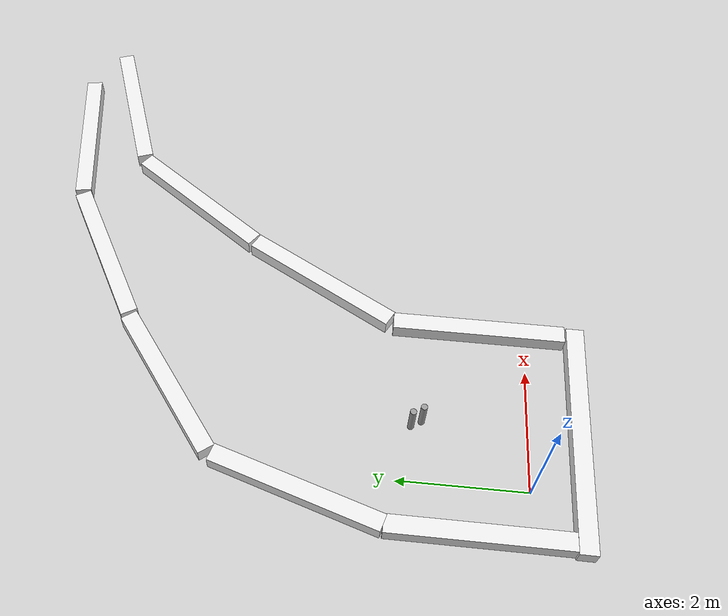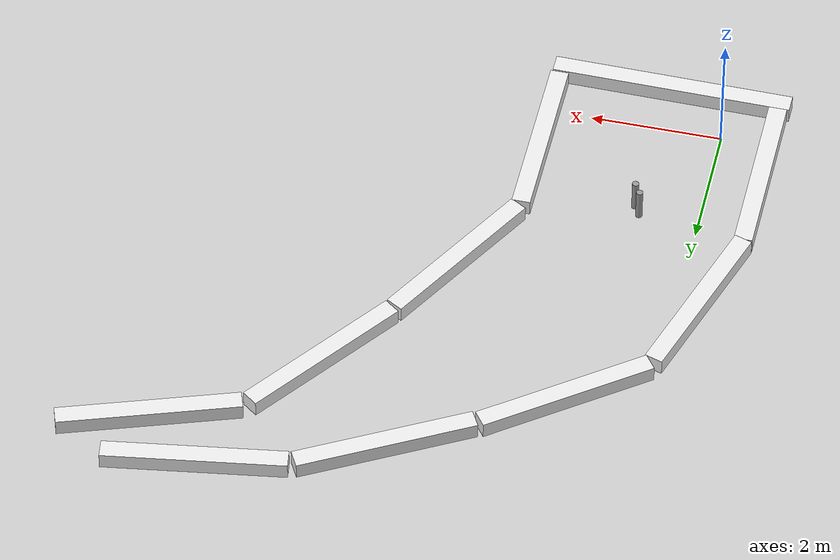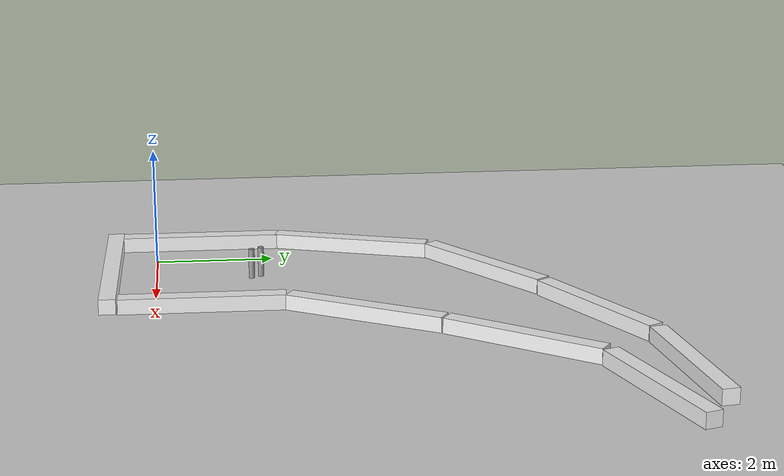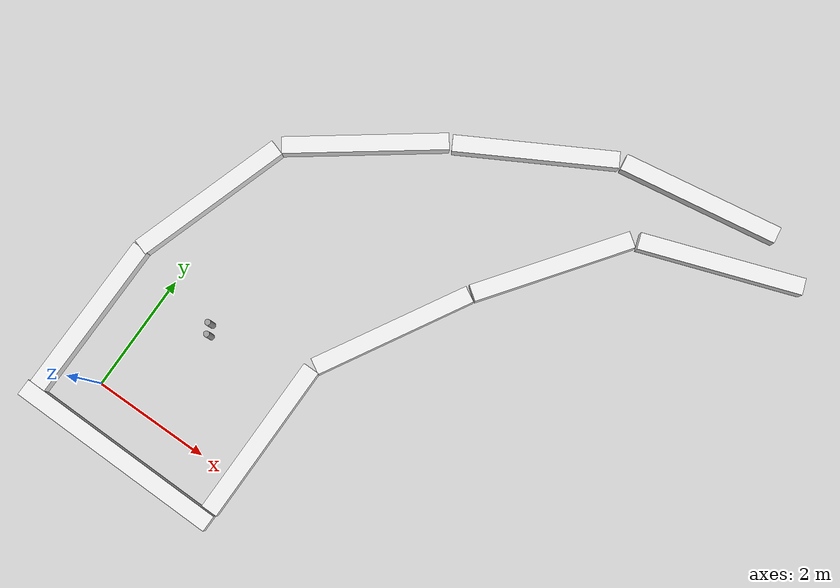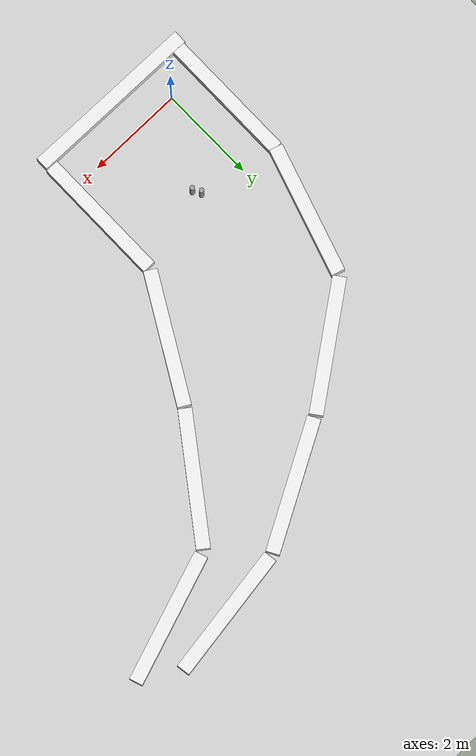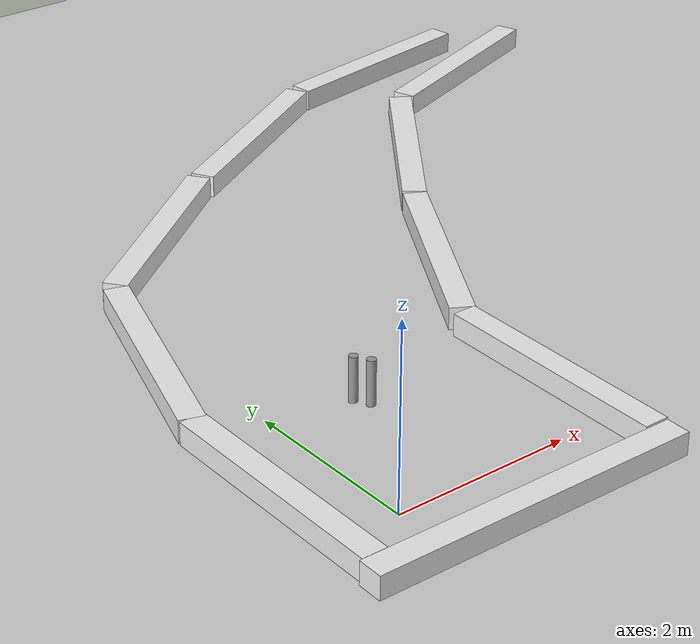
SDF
<sdf version="1.6">
 <world name="default">
  <light name="sun" type="directional">
   <pose>0 0 10 0 -0 0</pose>
   <diffuse>0.8 0.8 0.8 1</diffuse>
   <specular>0.1 0.1 0.1 1</specular>
   <attenuation>
    <range>1000</range>
    <constant>0.9</constant>
    <linear>0.01</linear>
    <quadratic>0.001</quadratic>
   </attenuation>
   <direction>-0.5 0.5 -1</direction>
  </light>
  <model name="unit_tracker">
   <link name="link">
    <pose>0.003083 0.120916 0 0 -0 0</pose>
    <inertial>
     <mass>1</mass>
     <inertia><ixx>0.145833</ixx><ixy>0</ixy><ixz>0</ixz><iyy>0.145833</iyy><iyz>0</iyz><izz>0.125</izz></inertia>
    </inertial>
    <visual name="visual">
     <geometry><cylinder><radius>0.05</radius><length>1</length></cylinder></geometry>
     <material>
      <script><name>Gazebo/Grey</name><uri>file://media/materials/scripts/gazebo.material</uri></script>
      <ambient>0.3 0.3 0.3 1</ambient>
      <diffuse>0.7 0.7 0.7 1</diffuse>
      <specular>0.01 0.01 0.01 1</specular>
      <emissive>0 0 0 1</emissive>
      <shader type="vertex"><normal_map>__default__</normal_map></shader>
     </material>
    </visual>
    <collision name="collision">
     <geometry><cylinder><radius>0.05</radius><length>1</length></cylinder></geometry>
     <surface>
      <friction>
       <ode><mu>1</mu><mu2>1</mu2><fdir1>0 0 0</fdir1><slip1>0</slip1><slip2>0</slip2></ode>
       <torsional>
        <coefficient>1</coefficient>
        <patch_radius>0</patch_radius>
        <surface_radius>0</surface_radius>
        <use_patch_radius>1</use_patch_radius>
        <ode><slip>0</slip></ode>
       </torsional>
      </friction>
      <bounce><restitution_coefficient>0</restitution_coefficient><threshold>1e+06</threshold></bounce>
      <contact>
       <collide_without_contact>0</collide_without_contact>
       <collide_without_contact_bitmask>1</collide_without_contact_bitmask>
       <collide_bitmask>1</collide_bitmask>
       <ode>
        <soft_cfm>0</soft_cfm>
        <soft_erp>0.2</soft_erp>
        <kp>1e+13</kp>
        <kd>1</kd>
        <max_vel>0.01</max_vel>
        <min_depth>0</min_depth>
       </ode>
       <bullet>
        <split_impulse>1</split_impulse>
        <split_impulse_penetration_threshold>-0.01</split_impulse_penetration_threshold>
        <soft_cfm>0</soft_cfm>
        <soft_erp>0.2</soft_erp>
        <kp>1e+13</kp>
        <kd>1</kd>
       </bullet>
      </contact>
     </surface>
    </collision>
   </link>
   <link name="link_clone">
    <pose>-0.090773 0.281567 0 0 -0 0</pose>
    <inertial>
     <mass>1</mass>
     <inertia><ixx>0.145833</ixx><ixy>0</ixy><ixz>0</ixz><iyy>0.145833</iyy><iyz>0</iyz><izz>0.125</izz></inertia>
    </inertial>
    <visual name="visual">
     <geometry><cylinder><radius>0.05</radius><length>1</length></cylinder></geometry>
     <material>
      <script><name>Gazebo/Grey</name><uri>file://media/materials/scripts/gazebo.material</uri></script>
      <ambient>0.3 0.3 0.3 1</ambient>
      <diffuse>0.7 0.7 0.7 1</diffuse>
      <specular>0.01 0.01 0.01 1</specular>
      <emissive>0 0 0 1</emissive>
      <shader type="vertex"><normal_map>__default__</normal_map></shader>
     </material>
    </visual>
    <collision name="collision">
     <geometry><cylinder><radius>0.05</radius><length>1</length></cylinder></geometry>
     <surface>
      <friction>
       <ode><mu>1</mu><mu2>1</mu2><fdir1>0 0 0</fdir1><slip1>0</slip1><slip2>0</slip2></ode>
       <torsional>
        <coefficient>1</coefficient>
        <patch_radius>0</patch_radius>
        <surface_radius>0</surface_radius>
        <use_patch_radius>1</use_patch_radius>
        <ode><slip>0</slip></ode>
       </torsional>
      </friction>
      <bounce><restitution_coefficient>0</restitution_coefficient><threshold>1e+06</threshold></bounce>
      <contact>
       <collide_without_contact>0</collide_without_contact>
       <collide_without_contact_bitmask>1</collide_without_contact_bitmask>
       <collide_bitmask>1</collide_bitmask>
       <ode>
        <soft_cfm>0</soft_cfm>
        <soft_erp>0.2</soft_erp>
        <kp>1e+13</kp>
        <kd>1</kd>
        <max_vel>0.01</max_vel>
        <min_depth>0</min_depth>
       </ode>
       <bullet>
        <split_impulse>1</split_impulse>
        <split_impulse_penetration_threshold>-0.01</split_impulse_penetration_threshold>
        <soft_cfm>0</soft_cfm>
        <soft_erp>0.2</soft_erp>
        <kp>1e+13</kp>
        <kd>1</kd>
       </bullet>
      </contact>
     </surface>
    </collision>
   </link>
   <static>0</static>
   <pose>1 1.5 0 0 -0 0</pose>
  </model>
  <model name="ground_plane">
   <static>1</static>
   <link name="link">
    <collision name="collision">
     <geometry><plane><normal>0 0 1</normal><size>100 100</size></plane></geometry>
     <surface><friction><ode><mu>100</mu><mu2>50</mu2></ode></friction></surface>
    </collision>
    <visual name="visual">
     <cast_shadows>0</cast_shadows>
     <geometry><plane><normal>0 0 1</normal><size>100 100</size></plane></geometry>
     <material>
      <script><uri>file://media/materials/scripts/gazebo.material</uri><name>Gazebo/Grey</name></script>
     </material>
    </visual>
   </link>
  </model>
  <gravity>0 0 -9.8</gravity>
  <magnetic_field>6e-06 2.3e-05 -4.2e-05</magnetic_field>
  <atmosphere type="adiabatic"/>
  <physics name="default_physics" default="0" type="ode">
   <max_step_size>0.001</max_step_size>
   <real_time_factor>1</real_time_factor>
   <real_time_update_rate>1000</real_time_update_rate>
  </physics>
  <scene><ambient>0.4 0.4 0.4 1</ambient><background>0.7 0.7 0.7 1</background><shadows>1</shadows></scene>
  <spherical_coordinates>
   <surface_model>EARTH_WGS84</surface_model>
   <latitude_deg>0</latitude_deg>
   <longitude_deg>0</longitude_deg>
   <elevation>0</elevation>
   <heading_deg>0</heading_deg>
  </spherical_coordinates>
  <model name="unit_box_0_clone">
   <pose>0.905886 -0.752387 0.127652 -0.000405 -7e-06 1.5587</pose>
   <link name="link">
    <inertial>
     <mass>1</mass>
     <inertia>
      <ixx>0.166667</ixx>
      <ixy>0</ixy>
      <ixz>0</ixz>
      <iyy>0.166667</iyy>
      <iyz>0</iyz>
      <izz>0.166667</izz>
     </inertia>
    </inertial>
    <collision name="collision"><geometry><box><size>0.280228 3.67509 0.256789</size></box></geometry></collision>
    <visual name="visual">
     <geometry><box><size>0.280228 3.67509 0.256789</size></box></geometry>
     <material>
      <script><name>Gazebo/White</name><uri>file://media/materials/scripts/gazebo.material</uri></script>
     </material>
    </visual>
   </link>
  </model>
  <model name="unit_box_0_clone_0">
   <pose>2.63979 0.759503 0.128395 0 0 -0.005646</pose>
   <link name="link">
    <inertial>
     <mass>1</mass>
     <inertia>
      <ixx>0.166667</ixx>
      <ixy>0</ixy>
      <ixz>0</ixz>
      <iyy>0.166667</iyy>
      <iyz>0</iyz>
      <izz>0.166667</izz>
     </inertia>
    </inertial>
    <collision name="collision"><geometry><box><size>0.280228 2.7368 0.256789</size></box></geometry></collision>
    <visual name="visual">
     <geometry><box><size>0.280228 2.7368 0.256789</size></box></geometry>
     <material>
      <script><name>Gazebo/White</name><uri>file://media/materials/scripts/gazebo.material</uri></script>
     </material>
    </visual>
   </link>
  </model>
  <model name="unit_box_0_clone_0_clone">
   <pose>3.35444 3.36674 0.128395 0 0 -0.522359</pose>
   <link name="link">
    <inertial>
     <mass>1</mass>
     <inertia>
      <ixx>0.166667</ixx>
      <ixy>0</ixy>
      <ixz>0</ixz>
      <iyy>0.166667</iyy>
      <iyz>0</iyz>
      <izz>0.166667</izz>
     </inertia>
    </inertial>
    <collision name="collision"><geometry><box><size>0.280228 2.7368 0.256789</size></box></geometry></collision>
    <visual name="visual">
     <geometry><box><size>0.280228 2.7368 0.256789</size></box></geometry>
     <material>
      <script><name>Gazebo/White</name><uri>file://media/materials/scripts/gazebo.material</uri></script>
     </material>
    </visual>
   </link>
  </model>
  <model name="unit_box_0_clone_0_clone_0">
   <pose>-0.749935 0.777129 0.12839 -3e-06 -2e-06 -0.005822</pose>
   <link name="link">
    <inertial>
     <mass>1</mass>
     <inertia>
      <ixx>0.166667</ixx>
      <ixy>0</ixy>
      <ixz>0</ixz>
      <iyy>0.166667</iyy>
      <iyz>0</iyz>
      <izz>0.166667</izz>
     </inertia>
    </inertial>
    <collision name="collision"><geometry><box><size>0.280228 2.7368 0.256789</size></box></geometry></collision>
    <visual name="visual">
     <geometry><box><size>0.280228 2.7368 0.256789</size></box></geometry>
     <material>
      <script><name>Gazebo/White</name><uri>file://media/materials/scripts/gazebo.material</uri></script>
     </material>
    </visual>
   </link>
  </model>
  <model name="unit_box_0_clone_0_clone_1">
   <pose>-0.325024 3.43479 0.128395 0 0 -0.312941</pose>
   <link name="link">
    <inertial>
     <mass>1</mass>
     <inertia>
      <ixx>0.166667</ixx>
      <ixy>0</ixy>
      <ixz>0</ixz>
      <iyy>0.166667</iyy>
      <iyz>0</iyz>
      <izz>0.166667</izz>
     </inertia>
    </inertial>
    <collision name="collision"><geometry><box><size>0.280228 2.7368 0.256789</size></box></geometry></collision>
    <visual name="visual">
     <geometry><box><size>0.280228 2.7368 0.256789</size></box></geometry>
     <material>
      <script><name>Gazebo/White</name><uri>file://media/materials/scripts/gazebo.material</uri></script>
     </material>
    </visual>
   </link>
  </model>
  <model name="unit_box_0_clone_0_clone_2">
   <pose>1.23281 5.61655 0.128395 0 0 -0.93776</pose>
   <link name="link">
    <inertial>
     <mass>1</mass>
     <inertia>
      <ixx>0.166667</ixx>
      <ixy>0</ixy>
      <ixz>0</ixz>
      <iyy>0.166667</iyy>
      <iyz>0</iyz>
      <izz>0.166667</izz>
     </inertia>
    </inertial>
    <collision name="collision"><geometry><box><size>0.280228 2.7368 0.256789</size></box></geometry></collision>
    <visual name="visual">
     <geometry><box><size>0.280228 2.7368 0.256789</size></box></geometry>
     <material>
      <script><name>Gazebo/White</name><uri>file://media/materials/scripts/gazebo.material</uri></script>
     </material>
    </visual>
   </link>
  </model>
  <model name="unit_box_0_clone_0_clone_3">
   <pose>4.87287 5.68555 0.128395 0 0 -0.636738</pose>
   <link name="link">
    <inertial>
     <mass>1</mass>
     <inertia>
      <ixx>0.166667</ixx>
      <ixy>0</ixy>
      <ixz>0</ixz>
      <iyy>0.166667</iyy>
      <iyz>0</iyz>
      <izz>0.166667</izz>
     </inertia>
    </inertial>
    <collision name="collision"><geometry><box><size>0.280228 2.7368 0.256789</size></box></geometry></collision>
    <visual name="visual">
     <geometry><box><size>0.280228 2.7368 0.256789</size></box></geometry>
     <material>
      <script><name>Gazebo/White</name><uri>file://media/materials/scripts/gazebo.material</uri></script>
     </material>
    </visual>
   </link>
  </model>
  <model name="unit_box_0_clone_0_clone_4">
   <pose>3.59178 7.09619 0.128395 0 0 -1.06522</pose>
   <link name="link">
    <inertial>
     <mass>1</mass>
     <inertia>
      <ixx>0.166667</ixx>
      <ixy>0</ixy>
      <ixz>0</ixz>
      <iyy>0.166667</iyy>
      <iyz>0</iyz>
      <izz>0.166667</izz>
     </inertia>
    </inertial>
    <collision name="collision"><geometry><box><size>0.280228 2.7368 0.256789</size></box></geometry></collision>
    <visual name="visual">
     <geometry><box><size>0.280228 2.7368 0.256789</size></box></geometry>
     <material>
      <script><name>Gazebo/White</name><uri>file://media/materials/scripts/gazebo.material</uri></script>
     </material>
    </visual>
   </link>
  </model>
  <model name="unit_box_0_clone_0_clone_5">
   <pose>6.21597 7.97823 0.128395 0 0 -1.42144</pose>
   <link name="link">
    <inertial>
     <mass>1</mass>
     <inertia>
      <ixx>0.166667</ixx>
      <ixy>0</ixy>
      <ixz>0</ixz>
      <iyy>0.166667</iyy>
      <iyz>0</iyz>
      <izz>0.166667</izz>
     </inertia>
    </inertial>
    <collision name="collision"><geometry><box><size>0.280228 2.7368 0.256789</size></box></geometry></collision>
    <visual name="visual">
     <geometry><box><size>0.280228 2.7368 0.256789</size></box></geometry>
     <material>
      <script><name>Gazebo/White</name><uri>file://media/materials/scripts/gazebo.material</uri></script>
     </material>
    </visual>
   </link>
  </model>
  <model name="unit_box_0_clone_0_clone_5_clone">
   <pose>7.07723 7.27641 0.128395 0 0 -1.23883</pose>
   <link name="link">
    <inertial>
     <mass>1</mass>
     <inertia>
      <ixx>0.166667</ixx>
      <ixy>0</ixy>
      <ixz>0</ixz>
      <iyy>0.166667</iyy>
      <iyz>0</iyz>
      <izz>0.166667</izz>
     </inertia>
    </inertial>
    <collision name="collision"><geometry><box><size>0.280228 2.7368 0.256789</size></box></geometry></collision>
    <visual name="visual">
     <geometry><box><size>0.280228 2.7368 0.256789</size></box></geometry>
     <material>
      <script><name>Gazebo/White</name><uri>file://media/materials/scripts/gazebo.material</uri></script>
     </material>
    </visual>
   </link>
  </model>
 </world>
</sdf>
